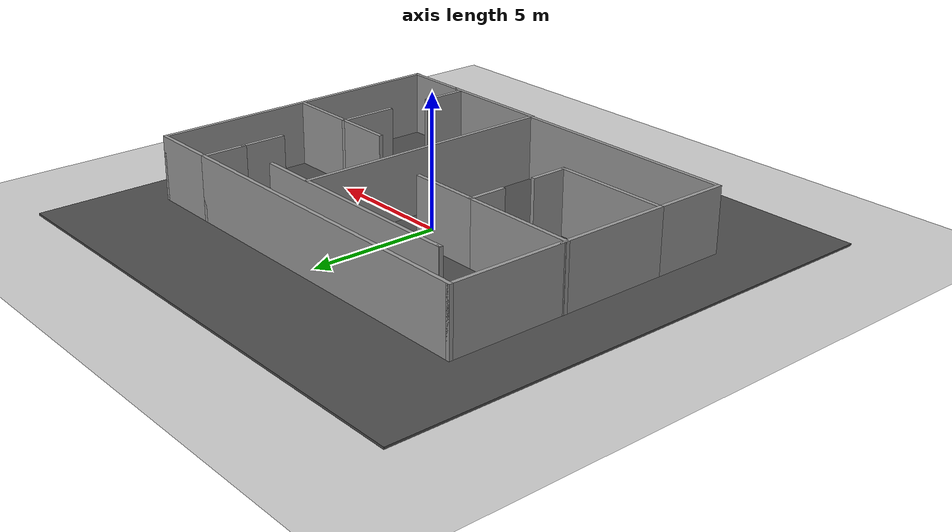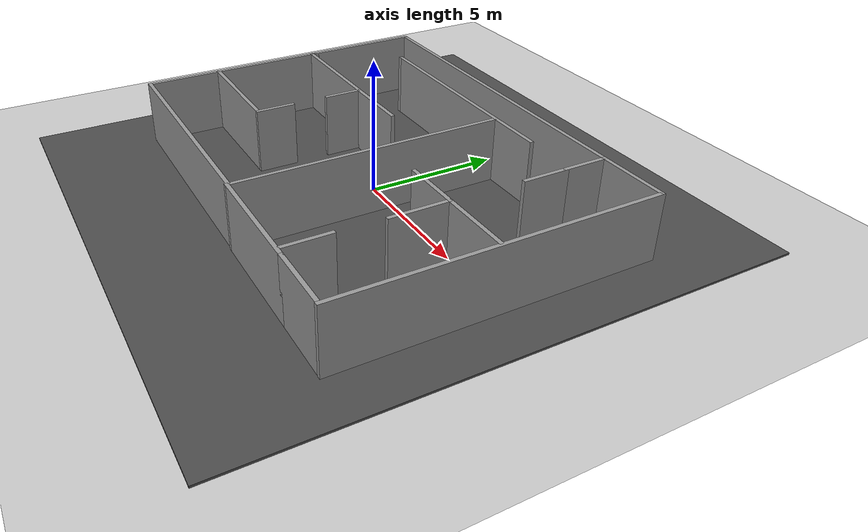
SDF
<sdf version="1.6">
 <world name="default">
  <model name="ground_plane">
   <static>1</static>
   <link name="link">
    <collision name="collision">
     <geometry><plane><normal>0 0 1</normal><size>100 100</size></plane></geometry>
     <surface><friction><ode><mu>100</mu><mu2>50</mu2></ode></friction></surface>
    </collision>
    <visual name="visual">
     <cast_shadows>0</cast_shadows>
     <geometry><plane><normal>0 0 1</normal><size>100 100</size></plane></geometry>
     <material>
      <script><uri>file://media/materials/scripts/gazebo.material</uri><name>Gazebo/Grey</name></script>
     </material>
    </visual>
   </link>
  </model>
  <gravity>0 0 -9.8</gravity>
  <magnetic_field>6e-06 2.3e-05 -4.2e-05</magnetic_field>
  <atmosphere type="adiabatic"/>
  <physics name="default_physics" default="0" type="ode">
   <max_step_size>0.001</max_step_size>
   <real_time_factor>1</real_time_factor>
   <real_time_update_rate>1000</real_time_update_rate>
  </physics>
  <scene><ambient>0.4 0.4 0.4 1</ambient><background>0.7 0.7 0.7 1</background><shadows>1</shadows></scene>
  <spherical_coordinates>
   <surface_model>EARTH_WGS84</surface_model>
   <latitude_deg>0</latitude_deg>
   <longitude_deg>0</longitude_deg>
   <elevation>0</elevation>
   <heading_deg>0</heading_deg>
  </spherical_coordinates>
  <model name="Sample2">
   <pose>0.262651 -0.145204 0 0 -0 0</pose>
   <link name="Wall_102">
    <collision name="Wall_102_Collision">
     <geometry><box><size>4.5 0.15 2.5</size></box></geometry>
     <pose>0 0 1.25 0 -0 0</pose>
    </collision>
    <visual name="Wall_102_Visual">
     <pose>0 0 1.25 0 -0 0</pose>
     <geometry><box><size>4.5 0.15 2.5</size></box></geometry>
     <material>
      <script><uri>file://media/materials/scripts/gazebo.material</uri><name>Gazebo/Grey</name></script>
      <ambient>1 1 1 1</ambient>
     </material>
     <meta><layer>0</layer></meta>
    </visual>
    <pose>-5.67809 1.22109 0 0 -0 3.14159</pose>
   </link>
   <link name="Wall_104">
    <collision name="Wall_104_Collision">
     <geometry><box><size>2.75 0.15 2.5</size></box></geometry>
     <pose>0 0 1.25 0 -0 0</pose>
    </collision>
    <visual name="Wall_104_Visual">
     <pose>0 0 1.25 0 -0 0</pose>
     <geometry><box><size>2.75 0.15 2.5</size></box></geometry>
     <material>
      <script><uri>file://media/materials/scripts/gazebo.material</uri><name>Gazebo/Grey</name></script>
      <ambient>1 1 1 1</ambient>
     </material>
     <meta><layer>0</layer></meta>
    </visual>
    <pose>-2.20309 1.22109 0 0 -0 0</pose>
   </link>
   <link name="Wall_106">
    <collision name="Wall_106_Collision">
     <geometry><box><size>2.9468 0.15 2.5</size></box></geometry>
     <pose>0 0 1.25 0 -0 0</pose>
    </collision>
    <visual name="Wall_106_Visual">
     <pose>0 0 1.25 0 -0 0</pose>
     <geometry><box><size>2.9468 0.15 2.5</size></box></geometry>
     <material>
      <script><uri>file://media/materials/scripts/gazebo.material</uri><name>Gazebo/Grey</name></script>
      <ambient>1 1 1 1</ambient>
     </material>
     <meta><layer>0</layer></meta>
    </visual>
    <pose>-7.84691 -4.3234 0 0 0 -1.5708</pose>
   </link>
   <link name="Wall_116">
    <collision name="Wall_116_Collision">
     <geometry><box><size>13.25 0.15 2.5</size></box></geometry>
     <pose>0 0 1.25 0 -0 0</pose>
    </collision>
    <visual name="Wall_116_Visual">
     <pose>0 0 1.25 0 -0 0</pose>
     <geometry><box><size>13.25 0.15 2.5</size></box></geometry>
     <material>
      <script><uri>file://media/materials/scripts/gazebo.material</uri><name>Gazebo/Grey</name></script>
      <ambient>1 1 1 1</ambient>
     </material>
     <meta><layer>0</layer></meta>
    </visual>
    <pose>-1.29691 5.775 0 0 -0 0</pose>
   </link>
   <link name="Wall_126">
    <collision name="Wall_126_Collision">
     <geometry><box><size>1.75 0.15 2.5</size></box></geometry>
     <pose>0 0 1.25 0 -0 0</pose>
    </collision>
    <visual name="Wall_126_Visual">
     <pose>0 0 1.25 0 -0 0</pose>
     <geometry><box><size>1.75 0.15 2.5</size></box></geometry>
     <material>
      <script><uri>file://media/materials/scripts/gazebo.material</uri><name>Gazebo/Grey</name></script>
      <ambient>1 1 1 1</ambient>
     </material>
     <meta><layer>0</layer></meta>
    </visual>
    <pose>5.25309 4.975 0 0 0 -1.5708</pose>
   </link>
   <link name="Wall_134">
    <collision name="Wall_134_Collision">
     <geometry><box><size>1.75 0.15 2.5</size></box></geometry>
     <pose>0 0 1.25 0 -0 0</pose>
    </collision>
    <visual name="Wall_134_Visual">
     <pose>0 0 1.25 0 -0 0</pose>
     <geometry><box><size>1.75 0.15 2.5</size></box></geometry>
     <material>
      <script><uri>file://media/materials/scripts/gazebo.material</uri><name>Gazebo/Grey</name></script>
      <ambient>1 1 1 1</ambient>
     </material>
     <meta><layer>0</layer></meta>
    </visual>
    <pose>5.25309 3.375 0 0 0 -1.5708</pose>
   </link>
   <link name="Wall_141">
    <collision name="Wall_141_Collision">
     <geometry><box><size>4.5 0.15 2.5</size></box></geometry>
     <pose>0 0 1.25 0 -0 0</pose>
    </collision>
    <visual name="Wall_141_Visual">
     <pose>0 0 1.25 0 -0 0</pose>
     <geometry><box><size>4.5 0.15 2.5</size></box></geometry>
     <material>
      <script><uri>file://media/materials/scripts/gazebo.material</uri><name>Gazebo/Grey</name></script>
      <ambient>1 1 1 1</ambient>
     </material>
     <meta><layer>0</layer></meta>
    </visual>
    <pose>3.26927 -5.76572 0 0 -0 0</pose>
   </link>
   <link name="Wall_209">
    <collision name="Wall_209_Collision">
     <geometry><box><size>2.75 0.15 2.5</size></box></geometry>
     <pose>0 0 1.25 0 -0 0</pose>
    </collision>
    <visual name="Wall_209_Visual">
     <pose>0 0 1.25 0 -0 0</pose>
     <geometry><box><size>2.75 0.15 2.5</size></box></geometry>
     <material>
      <script><uri>file://media/materials/scripts/gazebo.material</uri><name>Gazebo/Grey</name></script>
      <ambient>1 1 1 1</ambient>
     </material>
     <meta><layer>0</layer></meta>
    </visual>
    <pose>6.55309 5.775 0 0 -0 0</pose>
   </link>
   <link name="Wall_210">
    <collision name="Wall_210_Collision">
     <geometry><box><size>11.7 0.15 2.5</size></box></geometry>
     <pose>0 0 1.25 0 -0 0</pose>
    </collision>
    <visual name="Wall_210_Visual">
     <pose>0 0 1.25 0 -0 0</pose>
     <geometry><box><size>11.7 0.15 2.5</size></box></geometry>
     <material>
      <script><uri>file://media/materials/scripts/gazebo.material</uri><name>Gazebo/Grey</name></script>
      <ambient>1 1 1 1</ambient>
     </material>
     <meta><layer>0</layer></meta>
    </visual>
    <pose>7.85309 0 0 0 0 -1.5708</pose>
   </link>
   <link name="Wall_212">
    <collision name="Wall_212_Collision">
     <geometry><box><size>2.75 0.15 2.5</size></box></geometry>
     <pose>0 0 1.25 0 -0 0</pose>
    </collision>
    <visual name="Wall_212_Visual">
     <pose>0 0 1.25 0 -0 0</pose>
     <geometry><box><size>2.75 0.15 2.5</size></box></geometry>
     <material>
      <script><uri>file://media/materials/scripts/gazebo.material</uri><name>Gazebo/Grey</name></script>
      <ambient>1 1 1 1</ambient>
     </material>
     <meta><layer>0</layer></meta>
    </visual>
    <pose>6.46466 -0.159941 0 0 -0 0</pose>
   </link>
   <link name="Wall_214">
    <collision name="Wall_214_Collision">
     <geometry><box><size>2.5 0.15 2.5</size></box></geometry>
     <pose>0 0 1.25 0 -0 0</pose>
    </collision>
    <visual name="Wall_214_Visual">
     <pose>0 0 1.25 0 -0 0</pose>
     <geometry><box><size>2.5 0.15 2.5</size></box></geometry>
     <material>
      <script><uri>file://media/materials/scripts/gazebo.material</uri><name>Gazebo/Grey</name></script>
      <ambient>1 1 1 1</ambient>
     </material>
     <meta><layer>0</layer></meta>
    </visual>
    <pose>6.61927 -5.76572 0 0 -0 0</pose>
   </link>
   <link name="Wall_218">
    <collision name="Wall_218_Collision">
     <geometry><box><size>9 0.15 2.5</size></box></geometry>
     <pose>0 0 1.25 0 -0 0</pose>
    </collision>
    <visual name="Wall_218_Visual">
     <pose>0 0 1.25 0 -0 0</pose>
     <geometry><box><size>9 0.15 2.5</size></box></geometry>
     <material>
      <script><uri>file://media/materials/scripts/gazebo.material</uri><name>Gazebo/Grey</name></script>
      <ambient>1 1 1 1</ambient>
     </material>
     <meta><layer>0</layer></meta>
    </visual>
    <pose>-1.28363 4.37746 0 0 -0 3.14159</pose>
   </link>
   <link name="Wall_219">
    <collision name="Wall_219_Collision">
     <geometry><box><size>0.185626 0.15 2.5</size></box></geometry>
     <pose>0 0 1.25 0 -0 0</pose>
    </collision>
    <visual name="Wall_219_Visual">
     <pose>0 0 1.25 0 -0 0</pose>
     <geometry><box><size>0.185626 0.15 2.5</size></box></geometry>
     <material>
      <script><uri>file://media/materials/scripts/gazebo.material</uri><name>Gazebo/Grey</name></script>
      <ambient>0 0 0 0</ambient>
     </material>
     <meta><layer>0</layer></meta>
    </visual>
    <pose>-5.71123 4.37746 0 0 -0 3.14159</pose>
   </link>
   <link name="Wall_220">
    <collision name="Wall_220_Collision">
     <geometry><box><size>10.25 0.15 2.5</size></box></geometry>
     <pose>0 0 1.25 0 -0 0</pose>
    </collision>
    <visual name="Wall_220_Visual">
     <pose>0 0 1.25 0 -0 0</pose>
     <geometry><box><size>10.25 0.15 2.5</size></box></geometry>
     <material>
      <script><uri>file://media/materials/scripts/gazebo.material</uri><name>Gazebo/Grey</name></script>
      <ambient>1 1 1 1</ambient>
     </material>
     <meta><layer>0</layer></meta>
    </visual>
    <pose>1.09427 -0.715725 0 0 -0 1.5708</pose>
   </link>
   <link name="Wall_222">
    <collision name="Wall_222_Collision">
     <geometry><box><size>9 0.15 2.5</size></box></geometry>
     <pose>0 0 1.25 0 -0 0</pose>
    </collision>
    <visual name="Wall_222_Visual">
     <pose>0 0 1.25 0 -0 0</pose>
     <geometry><box><size>9 0.15 2.5</size></box></geometry>
     <material>
      <script><uri>file://media/materials/scripts/gazebo.material</uri><name>Gazebo/Grey</name></script>
      <ambient>1 1 1 1</ambient>
     </material>
     <meta><layer>0</layer></meta>
    </visual>
    <pose>-3.42191 -5.7218 0 0 -0 0</pose>
   </link>
   <link name="Wall_226">
    <collision name="Wall_226_Collision">
     <geometry><box><size>2.25 0.15 2.5</size></box></geometry>
     <pose>0 0 1.25 0 -0 0</pose>
    </collision>
    <visual name="Wall_226_Visual">
     <pose>0 0 1.25 0 -0 0</pose>
     <geometry><box><size>2.25 0.15 2.5</size></box></geometry>
     <material>
      <script><uri>file://media/materials/scripts/gazebo.material</uri><name>Gazebo/Grey</name></script>
      <ambient>1 1 1 1</ambient>
     </material>
     <meta><layer>0</layer></meta>
    </visual>
    <pose>4.11466 -0.159941 0 0 -0 3.14159</pose>
   </link>
   <link name="Wall_228">
    <collision name="Wall_228_Collision">
     <geometry><box><size>2.25 0.15 2.5</size></box></geometry>
     <pose>0 0 1.25 0 -0 0</pose>
    </collision>
    <visual name="Wall_228_Visual">
     <pose>0 0 1.25 0 -0 0</pose>
     <geometry><box><size>2.25 0.15 2.5</size></box></geometry>
     <material>
      <script><uri>file://media/materials/scripts/gazebo.material</uri><name>Gazebo/Grey</name></script>
      <ambient>1 1 1 1</ambient>
     </material>
     <meta><layer>0</layer></meta>
    </visual>
    <pose>5.16466 -1.20994 0 0 0 -1.5708</pose>
   </link>
   <link name="Wall_232">
    <collision name="Wall_232_Collision">
     <geometry><box><size>1.75 0.15 2.5</size></box></geometry>
     <pose>0 0 1.25 0 -0 0</pose>
    </collision>
    <visual name="Wall_232_Visual">
     <pose>0 0 1.25 0 -0 0</pose>
     <geometry><box><size>1.75 0.15 2.5</size></box></geometry>
     <material>
      <script><uri>file://media/materials/scripts/gazebo.material</uri><name>Gazebo/Grey</name></script>
      <ambient>1 1 1 1</ambient>
     </material>
     <meta><layer>0</layer></meta>
    </visual>
    <pose>5.09847 -4.84264 0 0 -0 1.5708</pose>
   </link>
   <link name="Wall_88">
    <collision name="Wall_88_Collision">
     <geometry><box><size>4.5 0.15 2.5</size></box></geometry>
     <pose>0 0 1.25 0 -0 0</pose>
    </collision>
    <visual name="Wall_88_Visual">
     <pose>0 0 1.25 0 -0 0</pose>
     <geometry><box><size>4.5 0.15 2.5</size></box></geometry>
     <material>
      <script><uri>file://media/materials/scripts/gazebo.material</uri><name>Gazebo/Grey</name></script>
      <ambient>1 1 1 1</ambient>
     </material>
     <meta><layer>0</layer></meta>
    </visual>
    <pose>-7.84691 3.6 0 0 0 -1.5708</pose>
   </link>
   <link name="Wall_90">
    <collision name="Wall_90_Collision">
     <geometry><box><size>4.5 0.15 2.5</size></box></geometry>
     <pose>0 0 1.25 0 -0 0</pose>
    </collision>
    <visual name="Wall_90_Visual">
     <pose>0 0 1.25 0 -0 0</pose>
     <geometry><box><size>4.5 0.15 2.5</size></box></geometry>
     <material>
      <script><uri>file://media/materials/scripts/gazebo.material</uri><name>Gazebo/Grey</name></script>
      <ambient>1 1 1 1</ambient>
     </material>
     <meta><layer>0</layer></meta>
    </visual>
    <pose>-7.84691 -0.75 0 0 0 -1.5708</pose>
   </link>
   <link name="Wall_92">
    <collision name="Wall_92_Collision">
     <geometry><box><size>4.5 0.15 2.5</size></box></geometry>
     <pose>0 0 1.25 0 -0 0</pose>
    </collision>
    <visual name="Wall_92_Visual">
     <pose>0 0 1.25 0 -0 0</pose>
     <geometry><box><size>4.5 0.15 2.5</size></box></geometry>
     <material>
      <script><uri>file://media/materials/scripts/gazebo.material</uri><name>Gazebo/Grey</name></script>
      <ambient>1 1 1 1</ambient>
     </material>
     <meta><layer>0</layer></meta>
    </visual>
    <pose>-5.67191 -2.925 0 0 -0 0</pose>
   </link>
   <link name="Wall_93">
    <collision name="Wall_93_Collision">
     <geometry><box><size>1.5 0.15 2.5</size></box></geometry>
     <pose>0 0 1.25 0 -0 0</pose>
    </collision>
    <visual name="Wall_93_Visual">
     <pose>0 0 1.25 0 -0 0</pose>
     <geometry><box><size>1.5 0.15 2.5</size></box></geometry>
     <material>
      <script><uri>file://media/materials/scripts/gazebo.material</uri><name>Gazebo/Grey</name></script>
      <ambient>1 1 1 1</ambient>
     </material>
     <meta><layer>0</layer></meta>
    </visual>
    <pose>-3.49691 -2.25 0 0 -0 1.5708</pose>
   </link>
   <link name="Wall_95">
    <collision name="Wall_95_Collision">
     <geometry><box><size>1.5 0.15 2.5</size></box></geometry>
     <pose>0 0 1.25 0 -0 0</pose>
    </collision>
    <visual name="Wall_95_Visual">
     <pose>0 0 1.25 0 -0 0</pose>
     <geometry><box><size>1.5 0.15 2.5</size></box></geometry>
     <material>
      <script><uri>file://media/materials/scripts/gazebo.material</uri><name>Gazebo/Grey</name></script>
      <ambient>1 1 1 1</ambient>
     </material>
     <meta><layer>0</layer></meta>
    </visual>
    <pose>-3.50309 0.546086 0 0 -0 1.5708</pose>
   </link>
   <static>1</static>
  </model>
  <model name="asphalt_plane">
   <static>1</static>
   <link name="link">
    <collision name="collision"><geometry><box><size>20 20 0.1</size></box></geometry></collision>
    <visual name="visual">
     <cast_shadows>0</cast_shadows>
     <geometry><box><size>20 20 0.1</size></box></geometry>
     <material>
      <script>
       <uri>model://asphalt_plane/materials/scripts</uri>
       <uri>model://asphalt_plane/materials/textures</uri>
       <name>vrc/asphalt</name>
      </script>
     </material>
    </visual>
   </link>
   <pose>-0.040881 -0.100251 0 0 -0 0</pose>
  </model>
  <light name="user_directional_light_0" type="directional">
   <pose>-0.565564 0.329745 1 0 -0 0</pose>
   <diffuse>0.5 0.5 0.5 1</diffuse>
   <specular>0.1 0.1 0.1 1</specular>
   <direction>0.1 0.1 -0.9</direction>
   <attenuation>
    <range>20</range>
    <constant>0.5</constant>
    <linear>0.01</linear>
    <quadratic>0.001</quadratic>
   </attenuation>
  </light>
  <light name="user_directional_light_1" type="directional">
   <pose>-0.426477 -1.145 1 0 -0 0</pose>
   <diffuse>0.5 0.5 0.5 1</diffuse>
   <specular>0.1 0.1 0.1 1</specular>
   <direction>0.1 0.1 -0.9</direction>
   <attenuation>
    <range>20</range>
    <constant>0.5</constant>
    <linear>0.01</linear>
    <quadratic>0.001</quadratic>
   </attenuation>
  </light>
  <light name="user_spot_light_0" type="spot">
   <pose>7.58201 -4.68578 1 0 -0 0</pose>
   <diffuse>0.5 0.5 0.5 1</diffuse>
   <specular>0.1 0.1 0.1 1</specular>
   <direction>0 0 -1</direction>
   <attenuation>
    <range>20</range>
    <constant>0.5</constant>
    <linear>0.01</linear>
    <quadratic>0.001</quadratic>
   </attenuation>
   <cast_shadows>0</cast_shadows>
   <spot><inner_angle>0.6</inner_angle><outer_angle>1</outer_angle><falloff>1</falloff></spot>
  </light>
 </world>
</sdf>
